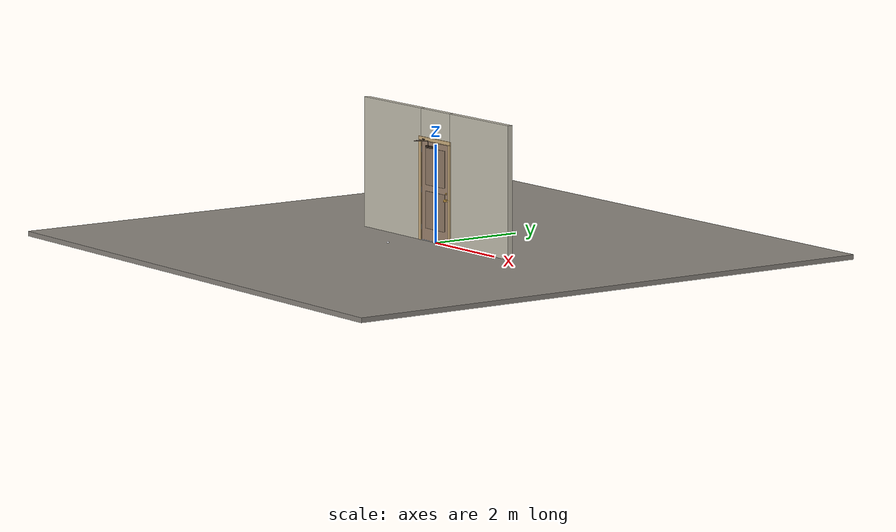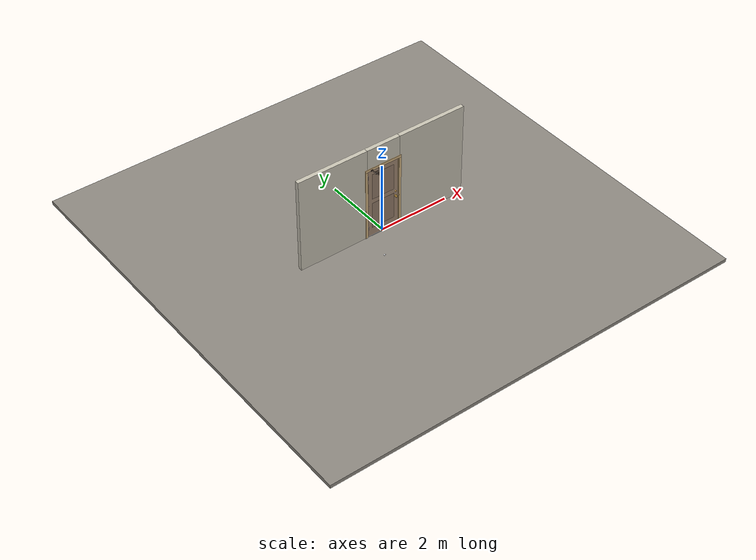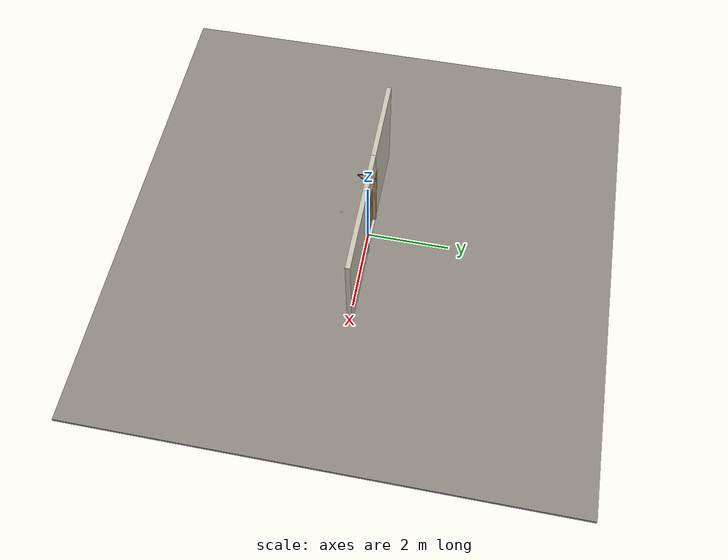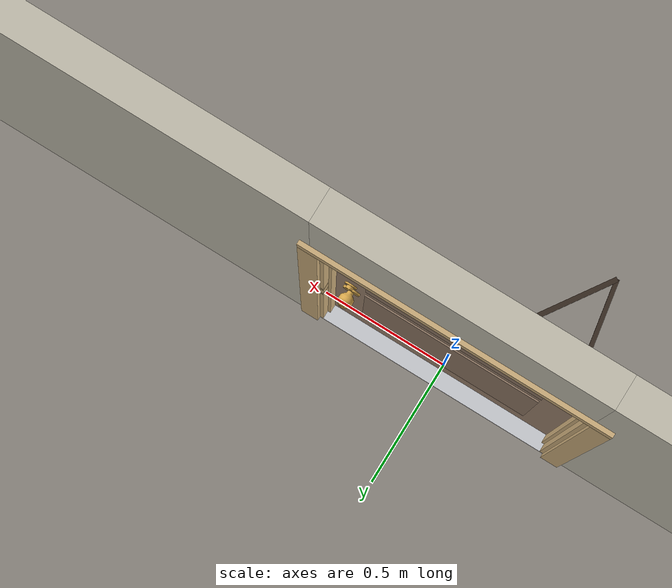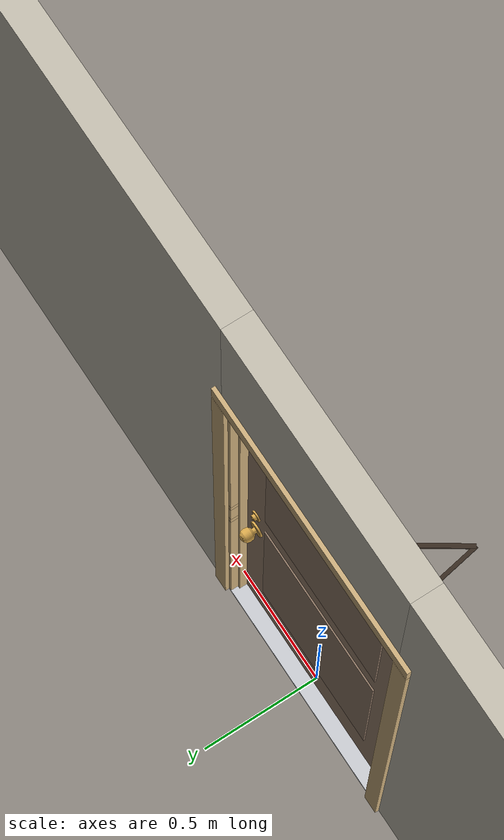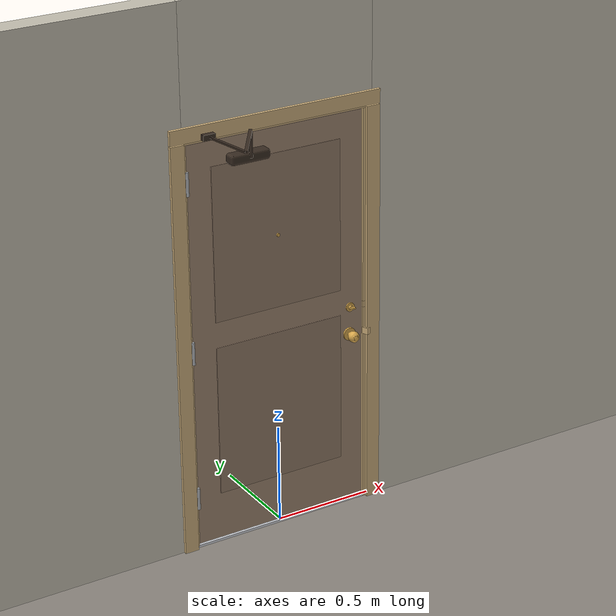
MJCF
<?xml version="1.0" ?>
<mujoco model="db0255_swing_single_full">
  <compiler angle="radian" meshdir="../../hardware" texturedir="../../textures" autolimits="true" inertiafromgeom="false"/>
  <option timestep="0.002" integrator="implicitfast" cone="elliptic" impratio="10" noslip_iterations="3">
    <flag multiccd="enable"/>
  </option>
  <size memory="16M"/>
  <default>
    <geom condim="4" solref="0.005 1" solimp="0.95 0.99 0.001"/>
    <joint solreflimit="0.005 1" solimplimit="0.95 0.99 0.001"/>
    <tendon solreflimit="0.005 1"/>
    <equality solref="0.002 1"/>
  </default>
  <visual>
    <headlight ambient="0.4 0.4 0.4" diffuse="0.7 0.7 0.7" specular="0.2 0.2 0.2"/>
    <quality shadowsize="4096"/>
    <map znear="0.01" zfar="60"/>
  </visual>
  <asset>
    <mesh name="closer_body_78399c60f5" file="closer_body_78399c60f5.obj"/>
    <mesh name="cyl_face_e9e5036966" file="cyl_face_e9e5036966.obj"/>
    <mesh name="hinge_e22b26c0c1" file="hinge_e22b26c0c1.obj"/>
    <mesh name="hinge_jamb_e1d088f8dc" file="hinge_jamb_e1d088f8dc.obj"/>
    <mesh name="knob_d1888f6f03" file="knob_d1888f6f03.obj"/>
    <mesh name="peephole_f829311a59" file="peephole_f829311a59.obj"/>
    <mesh name="thumbturn_eb5c9899a3" file="thumbturn_eb5c9899a3.obj"/>
    <material name="mat_floor" rgba="0.55 0.53 0.5 1" specular="0.2" shininess="0.15" reflectance="0"/>
    <material name="mat_wall" rgba="0.78 0.76 0.7 1" specular="0.2" shininess="0.1" reflectance="0"/>
    <material name="mat_leaf" rgba="0.625 0.525 0.44 1" specular="0.2" shininess="0.45" reflectance="0"/>
    <material name="mat_leaf_panel" rgba="0.575 0.483 0.405 1" specular="0.2" shininess="0.45" reflectance="0"/>
    <material name="mat_hinge" rgba="0.65 0.66 0.68 1" specular="0.74" shininess="0.5" reflectance="0.36"/>
    <material name="mat_op_brass" rgba="0.85 0.66 0.3 1" specular="0.8" shininess="0.75" reflectance="0.4"/>
    <material name="mat_trim" rgba="0.85 0.66 0.3 1" specular="0.8" shininess="0.75" reflectance="0.4"/>
    <material name="mat_bolt" rgba="0.85 0.66 0.3 1" specular="0.8" shininess="0.75" reflectance="0.4"/>
    <material name="mat_deadbolt" rgba="0.85 0.66 0.3 1" specular="0.8" shininess="0.75" reflectance="0.4"/>
    <material name="mat_frame" rgba="0.82 0.7 0.5 1" specular="0.2" shininess="0.45" reflectance="0"/>
    <material name="mat_seal" rgba="0.1 0.1 0.1 1" specular="0.2" shininess="0.1" reflectance="0"/>
    <material name="mat_threshold" rgba="0.8 0.81 0.83 1" specular="0.8" shininess="0.6" reflectance="0.4"/>
    <material name="mat_closer" rgba="0.22 0.17 0.13 1" specular="0.8" shininess="0.6" reflectance="0.4"/>
    <material name="mat_peephole" rgba="0.85 0.66 0.3 1" specular="0.8" shininess="0.75" reflectance="0.4"/>
    <material name="mat_stop" rgba="0.9 0.9 0.92 1" specular="0.8" shininess="0.9" reflectance="0.4"/>
    <texture name="skybox" type="skybox" builtin="gradient" rgb1="0.6 0.7 0.85" rgb2="0.9 0.92 0.95" width="256" height="256"/>
  </asset>
  <worldbody>
    <light name="sun" pos="1.5 -2.5 4" dir="-0.3 0.5 -0.8" directional="true" diffuse="0.8 0.8 0.8" specular="0.3 0.3 0.3" castshadow="true"/>
    <light name="fill" pos="-1.5 2.5 3" dir="0.3 -0.5 -0.7" directional="true" diffuse="0.35 0.35 0.4" castshadow="false"/>
    <camera name="robot_view" pos="0 -2.513687 1.734312" xyaxes="1 0 0 0 0.26963 0.962964" fovy="52"/>
    <camera name="far_view" pos="0 2.570688 1.734312" xyaxes="-1 0 0 0 -0.26963 0.962964" fovy="52"/>
    <camera name="iso" pos="1.932062 -2.106937 2.141063" xyaxes="0.741536 0.670913 0 -0.242917 0.268487 0.932151" fovy="46"/>
    <camera name="detail_handle" pos="0.5665 -0.8685 1.194" xyaxes="0.97561 0.219512 0 -0.070934 0.315262 0.94635" fovy="38"/>
    <geom name="floor" type="box" size="6 6 0.05" pos="0 0 -0.05" material="mat_floor" group="0" contype="1" conaffinity="1" friction="0.8 0.005 0.0001" density="2400"/>
    <geom name="wall_left" type="box" size="1.01025 0.0575 1.35" pos="-1.48975 0.0285 1.35" material="mat_wall" group="0" contype="1" conaffinity="1" friction="0.6 0.005 0.0001" density="800"/>
    <geom name="wall_right" type="box" size="0.99525 0.0575 1.35" pos="1.50475 0.0285 1.35" material="mat_wall" group="0" contype="1" conaffinity="1" friction="0.6 0.005 0.0001" density="800"/>
    <geom name="wall_header" type="box" size="0.4945 0.0575 0.303" pos="0.015 0.0285 2.397" material="mat_wall" group="0" contype="1" conaffinity="1" friction="0.6 0.005 0.0001" density="800"/>
    <geom name="hinge_0_jamb" type="mesh" mesh="hinge_jamb_e1d088f8dc" pos="-0.4575 -0.029 0.267" material="mat_hinge" group="1" contype="0" conaffinity="0" density="7850"/>
    <geom name="hinge_1_jamb" type="mesh" mesh="hinge_jamb_e1d088f8dc" pos="-0.4575 -0.029 1.029" material="mat_hinge" group="1" contype="0" conaffinity="0" density="7850"/>
    <geom name="hinge_2_jamb" type="mesh" mesh="hinge_jamb_e1d088f8dc" pos="-0.4575 -0.029 1.861" material="mat_hinge" group="1" contype="0" conaffinity="0" density="7850"/>
    <geom name="leaf_deadbolt_strike_b" type="box" size="0.0155 0.003 0.0005" pos="0.46 0 1.0355" quat="-0.5 -0.5 0.5 0.5" material="mat_deadbolt" group="1" contype="0" conaffinity="0" density="7800"/>
    <geom name="leaf_deadbolt_strike_l" type="box" size="0.003 0.0155 0.0005" pos="0.46 0.0125 1.054" quat="-0.5 -0.5 0.5 0.5" material="mat_deadbolt" group="1" contype="0" conaffinity="0" density="7800"/>
    <geom name="leaf_deadbolt_strike_t" type="box" size="0.0155 0.003 0.0005" pos="0.46 0 1.0725" quat="-0.5 -0.5 0.5 0.5" material="mat_deadbolt" group="1" contype="0" conaffinity="0" density="7800"/>
    <geom name="leaf_deadbolt_strike_r" type="box" size="0.003 0.0155 0.0005" pos="0.46 -0.0125 1.054" quat="-0.5 -0.5 0.5 0.5" material="mat_deadbolt" group="1" contype="0" conaffinity="0" density="7800"/>
    <geom name="jamb_hinge" type="box" size="0.0095 0.0575 1.0225" pos="-0.47 0.0285 1.0225" material="mat_frame" group="0" contype="1" conaffinity="1" friction="0.6 0.005 0.0001" density="400"/>
    <geom name="strike_914_wall_n" type="box" size="0.0245 0.039075 0.0167" pos="0.485 0.046925 0.914" material="mat_frame" group="0" contype="1" conaffinity="1" friction="0.6 0.005 0.0001" density="400"/>
    <geom name="strike_914_wall_p" type="box" size="0.0245 0.008 0.0167" pos="0.485 -0.01585 0.914" material="mat_frame" group="0" contype="1" conaffinity="1" friction="0.6 0.005 0.0001" density="400"/>
    <geom name="strike_914_ramp" type="box" size="0.0245 0.01649 0.0167" pos="0.489636 -0.028673 0.914" quat="0.977148 0 0 0.212558" material="mat_frame" group="0" contype="1" conaffinity="1" friction="0.12 0.005 0.0001" density="400"/>
    <geom name="strike_914_back" type="box" size="0.01615 0.00785 0.0167" pos="0.49335 0 0.914" material="mat_frame" group="0" contype="1" conaffinity="1" friction="0.6 0.005 0.0001" density="400"/>
    <geom name="strike_1054_wall_n" type="box" size="0.0245 0.03825 0.0155" pos="0.485 0.04775 1.054" material="mat_frame" group="0" contype="1" conaffinity="1" friction="0.6 0.005 0.0001" density="400"/>
    <geom name="strike_1054_wall_p" type="box" size="0.0245 0.00975 0.0155" pos="0.485 -0.01925 1.054" material="mat_frame" group="0" contype="1" conaffinity="1" friction="0.6 0.005 0.0001" density="400"/>
    <geom name="strike_1054_back" type="box" size="0.0098 0.0095 0.0155" pos="0.4997 0 1.054" material="mat_frame" group="0" contype="1" conaffinity="1" friction="0.6 0.005 0.0001" density="400"/>
    <geom name="jamb_strike_0" type="box" size="0.0245 0.0575 0.44865" pos="0.485 0.0285 0.44865" material="mat_frame" group="0" contype="1" conaffinity="1" friction="0.6 0.005 0.0001" density="400"/>
    <geom name="jamb_strike_1" type="box" size="0.0245 0.0575 0.0539" pos="0.485 0.0285 0.9846" material="mat_frame" group="0" contype="1" conaffinity="1" friction="0.6 0.005 0.0001" density="400"/>
    <geom name="jamb_strike_2" type="box" size="0.0245 0.0575 0.48775" pos="0.485 0.0285 1.55725" material="mat_frame" group="0" contype="1" conaffinity="1" friction="0.6 0.005 0.0001" density="400"/>
    <geom name="jamb_head" type="box" size="0.4945 0.0575 0.0095" pos="0.015 0.0285 2.0545" material="mat_frame" group="0" contype="1" conaffinity="1" friction="0.6 0.005 0.0001" density="400"/>
    <geom name="head_stud" type="box" size="0.4945 0.0575 0.015" pos="0.015 0.0285 2.079" material="mat_wall" group="0" contype="1" conaffinity="1" friction="0.6 0.005 0.0001" density="500"/>
    <geom name="stop_hinge" type="box" size="0.0055 0.016 1.0225" pos="-0.455 0.0385 1.0225" material="mat_frame" group="0" contype="1" conaffinity="1" friction="0.6 0.005 0.0001" density="400"/>
    <geom name="stop_strike" type="box" size="0.0055 0.016 1.0225" pos="0.455 0.0385 1.0225" material="mat_frame" group="0" contype="1" conaffinity="1" friction="0.6 0.005 0.0001" density="400"/>
    <geom name="stop_head" type="box" size="0.4605 0.016 0.0055" pos="0 0.0385 2.0395" material="mat_frame" group="0" contype="1" conaffinity="1" friction="0.6 0.005 0.0001" density="400"/>
    <geom name="seal_hinge" type="box" size="0.004 0.002 1.0225" pos="-0.4575 0.024 1.0225" material="mat_seal" group="1" contype="0" conaffinity="0" density="1100"/>
    <geom name="seal_strike" type="box" size="0.004 0.002 1.0225" pos="0.4575 0.024 1.0225" material="mat_seal" group="1" contype="0" conaffinity="0" density="1100"/>
    <geom name="seal_head" type="box" size="0.4405 0.002 0.008" pos="0 0.024 2.033" material="mat_seal" group="1" contype="0" conaffinity="0" density="1100"/>
    <geom name="casing_l_n" type="box" size="0.035 0.008 1.032" pos="-0.5095 -0.037 1.0225" material="mat_frame" group="2" contype="0" conaffinity="0" density="400"/>
    <geom name="casing_r_n" type="box" size="0.035 0.008 1.032" pos="0.5095 -0.037 1.0225" material="mat_frame" group="2" contype="0" conaffinity="0" density="400"/>
    <geom name="casing_h_n" type="box" size="0.5445 0.008 0.035" pos="0 -0.037 2.094" material="mat_frame" group="2" contype="0" conaffinity="0" density="400"/>
    <geom name="casing_l_p" type="box" size="0.035 0.008 1.032" pos="-0.5095 0.094 1.0225" material="mat_frame" group="2" contype="0" conaffinity="0" density="400"/>
    <geom name="casing_r_p" type="box" size="0.035 0.008 1.032" pos="0.5095 0.094 1.0225" material="mat_frame" group="2" contype="0" conaffinity="0" density="400"/>
    <geom name="casing_h_p" type="box" size="0.5445 0.008 0.035" pos="0 0.094 2.094" material="mat_frame" group="2" contype="0" conaffinity="0" density="400"/>
    <geom name="threshold" type="box" size="0.4795 0.0575 0.0065" pos="0 0.0285 0.0065" material="mat_threshold" group="0" contype="1" conaffinity="1" friction="0.5 0.005 0.0001" density="2700"/>
    <geom name="closer_bracket" type="box" size="0.03 0.012 0.014" pos="-0.3605 -0.057 2.075" material="mat_closer" group="1" contype="0" conaffinity="0" density="2700"/>
    <geom name="floor_stop_dome" type="sphere" size="0.025" pos="-0.545135 -0.801201 0" material="mat_stop" group="0" contype="1" conaffinity="1" friction="0.6 0.005 0.0001" density="7000"/>
    <site name="approach_point" pos="0 -1.5 0" quat="1 0 0 0" size="0.05" rgba="0.2 0.9 0.2 0.5" group="4"/>
    <site name="goal_point" pos="0 1.5 0" quat="1 0 0 0" size="0.05" rgba="0.2 0.9 0.2 0.5" group="4"/>
    <site name="door_plane_center" pos="0 0 1.0225" quat="1 0 0 0" size="0.02" rgba="0.2 0.9 0.2 0.5" group="4"/>
    <body name="leaf" pos="-0.4605 0 0">
      <inertial pos="0.44007 -0.004818 1.109777" mass="43.618477" quat="-0.495717 0.485789 0.509016 0.509094" diaginertia="2.966011663 16.554224023 19.489310961"/>
      <joint name="leaf_hinge" type="hinge" axis="0 0 -1" pos="0.003 -0.029 0" limited="true" range="0 1.658063" solreflimit="0.02 1" damping="6.25611" frictionloss="0.95807" stiffness="9.135494" springref="-1.778776" armature="0.02"/>
      <geom name="leaf_slab" type="box" size="0.457 0.022 1.012" pos="0.46 0 1.029" material="mat_leaf" group="0" contype="1" conaffinity="1" friction="0.35 0.005 0.0001" density="1"/>
      <geom name="leaf_panel_0_n" type="box" size="0.33646 0.003 0.38254" pos="0.46 -0.025 0.64218" material="mat_leaf_panel" group="1" contype="0" conaffinity="0" density="1"/>
      <geom name="leaf_panel_0_p" type="box" size="0.33646 0.003 0.38254" pos="0.46 0.025 0.64218" material="mat_leaf_panel" group="1" contype="0" conaffinity="0" density="1"/>
      <geom name="leaf_panel_1_n" type="box" size="0.33646 0.003 0.38254" pos="0.46 -0.025 1.53726" material="mat_leaf_panel" group="1" contype="0" conaffinity="0" density="1"/>
      <geom name="leaf_panel_1_p" type="box" size="0.33646 0.003 0.38254" pos="0.46 0.025 1.53726" material="mat_leaf_panel" group="1" contype="0" conaffinity="0" density="1"/>
      <geom name="hinge_0" type="mesh" mesh="hinge_e22b26c0c1" pos="0.003 -0.029 0.267" material="mat_hinge" group="1" contype="0" conaffinity="0" density="7850"/>
      <geom name="hinge_1" type="mesh" mesh="hinge_e22b26c0c1" pos="0.003 -0.029 1.029" material="mat_hinge" group="1" contype="0" conaffinity="0" density="7850"/>
      <geom name="hinge_2" type="mesh" mesh="hinge_e22b26c0c1" pos="0.003 -0.029 1.861" material="mat_hinge" group="1" contype="0" conaffinity="0" density="7850"/>
      <geom name="leaf_latch_bolt_faceplate" type="box" size="0.0006 0.01235 0.0267" pos="0.9164 0 0.914" material="mat_bolt" group="1" contype="0" conaffinity="0" density="8500"/>
      <geom name="leaf_deadbolt_faceplate" type="box" size="0.0006 0.014 0.0245" pos="0.9164 0 1.054" material="mat_deadbolt" group="1" contype="0" conaffinity="0" density="8500"/>
      <geom name="leaf_deadbolt_cylinder_face" type="mesh" mesh="cyl_face_e9e5036966" pos="0.852 0.022 1.054" quat="-0.707107 0.707107 0 0" material="mat_deadbolt" group="1" contype="0" conaffinity="0" density="7100"/>
      <geom name="closer_body" type="mesh" mesh="closer_body_78399c60f5" pos="0.3 -0.022 1.944" quat="0.707107 0.707107 0 0" material="mat_closer" group="1" contype="0" conaffinity="0" density="2000"/>
      <geom name="closer_body_col" type="box" size="0.1 0.03 0.025" pos="0.3 -0.052 1.944" material="mat_closer" group="3" contype="1" conaffinity="1" rgba="0.8 0.3 0.3 0.25" friction="0.6 0.005 0.0001" density="2000"/>
      <geom name="closer_pinion_shaft" type="cylinder" size="0.008 0.0655" pos="0.3 -0.08 2.0095" material="mat_closer" group="1" contype="0" conaffinity="0" density="2700"/>
      <geom name="peephole" type="mesh" mesh="peephole_f829311a59" pos="0.46 -0.022 1.517" quat="0.707107 0.707107 0 0" material="mat_peephole" group="2" contype="0" conaffinity="0" density="8500"/>
      <site name="leaf_edge_mid" pos="0.917 0 1.012" quat="1 0 0 0" size="0.02" rgba="0.2 0.9 0.2 0.5" group="4"/>
      <body name="leaf_handle" pos="0.847 0 0.914">
        <inertial pos="0 0 0" mass="1.151952" quat="0.5 -0.5 0.5 -0.5" diaginertia="0.000312514 0.004264603 0.004264603"/>
        <joint name="leaf_handle_hinge" type="hinge" axis="0 -1 0" limited="true" range="0 0.87" damping="0.143614" frictionloss="0.038" stiffness="0.5" springref="-0.5" armature="0.01"/>
        <geom name="leaf_handle_spindle" type="cylinder" size="0.006 0.03" pos="0 0 0" quat="0.707107 -0.707107 0 0" material="mat_op_brass" group="1" contype="0" conaffinity="0" density="7850"/>
        <geom name="leaf_handle_knob_n" type="mesh" mesh="knob_d1888f6f03" pos="0 -0.022 0" quat="0.707107 0.707107 0 0" material="mat_op_brass" group="1" contype="0" conaffinity="0" density="3000"/>
        <geom name="leaf_handle_knob_col_n" type="sphere" size="0.0243" pos="0 -0.0685 0" material="mat_op_brass" group="0" contype="1" conaffinity="1" friction="0.9 0.01 0.0001" density="3000"/>
        <geom name="leaf_handle_knob_neck_n" type="cylinder" size="0.011 0.012" pos="0 -0.034 0" quat="0.707107 -0.707107 0 0" material="mat_op_brass" group="3" contype="1" conaffinity="1" rgba="0.8 0.3 0.3 0.25" friction="0.6 0.005 0.0001" density="3000"/>
        <geom name="leaf_handle_knob_p" type="mesh" mesh="knob_d1888f6f03" pos="0 0.022 0" quat="-0.707107 0.707107 0 0" material="mat_op_brass" group="1" contype="0" conaffinity="0" density="3000"/>
        <geom name="leaf_handle_knob_col_p" type="sphere" size="0.0243" pos="0 0.0685 0" material="mat_op_brass" group="0" contype="1" conaffinity="1" friction="0.9 0.01 0.0001" density="3000"/>
        <geom name="leaf_handle_knob_neck_p" type="cylinder" size="0.011 0.012" pos="0 0.034 0" quat="0.707107 -0.707107 0 0" material="mat_op_brass" group="3" contype="1" conaffinity="1" rgba="0.8 0.3 0.3 0.25" friction="0.6 0.005 0.0001" density="3000"/>
        <site name="leaf_handle_grip_n" pos="0 -0.0685 0" quat="1 0 0 0" size="0.012" rgba="0.2 0.9 0.2 0.5" group="4"/>
        <site name="leaf_handle_grip_p" pos="0 0.0685 0" quat="1 0 0 0" size="0.012" rgba="0.2 0.9 0.2 0.5" group="4"/>
      </body>
      <body name="leaf_latch_bolt" pos="0.917 0 0.914">
        <inertial pos="-0.00865 0 0" mass="0.041419" quat="0.92388 -0.382683 0 0" diaginertia="0.000000798 0.000005598 0.000005598"/>
        <joint name="leaf_latch_bolt_slide" type="slide" axis="-1 0 0" limited="true" range="0 0.0127" damping="2" frictionloss="0.3" stiffness="300" springref="-0.008333" armature="0.1"/>
        <geom name="leaf_latch_bolt_capsule" type="capsule" size="0.00635 0.015" pos="-0.00865 0 0" quat="0.707107 0 0.707107 0" material="mat_bolt" group="0" contype="1" conaffinity="1" friction="0.2 0.005 0.0001" density="8500"/>
      </body>
      <body name="leaf_deadbolt" pos="0.917 0 1.054">
        <inertial pos="-0.0277 0 0" mass="0.18836" quat="0 0 0.707107 0.707107" diaginertia="0.000013829 0.000052194 0.000057986"/>
        <joint name="leaf_deadbolt_slide" type="slide" axis="-1 0 0" limited="true" range="0 0.0254" damping="5" frictionloss="1.5" armature="0.1" ref="0.0254"/>
        <geom name="leaf_deadbolt_box" type="box" size="0.0277 0.008 0.0125" pos="-0.0277 0 0" material="mat_deadbolt" group="0" contype="1" conaffinity="1" friction="0.3 0.005 0.0001" density="8500"/>
      </body>
      <body name="leaf_deadbolt_thumbturn" pos="0.852 -0.022 1.054">
        <inertial pos="0 -0.012928 0" mass="0.178946" quat="0.000001 0.707107 -0.707107 -0.000001" diaginertia="0.000026045 0.000026215 0.000032438"/>
        <joint name="leaf_deadbolt_thumbturn_hinge" type="hinge" axis="0 1 0" limited="true" range="0 1.5708" damping="0.05" frictionloss="0.35" armature="0.005" ref="1.5708"/>
        <geom name="leaf_deadbolt_thumbturn_mesh" type="mesh" mesh="thumbturn_eb5c9899a3" pos="0 0 0" quat="0.499999 0.499999 0.500001 -0.500001" material="mat_deadbolt" group="0" contype="1" conaffinity="1" friction="0.6 0.005 0.0001" density="7100"/>
        <geom name="leaf_deadbolt_thumbturn_col" type="box" size="0.006 0.012 0.016" pos="0 -0.02 0" quat="0.707105 0 0.707108 0" material="mat_deadbolt" group="3" contype="1" conaffinity="1" rgba="0.8 0.3 0.3 0.25" friction="0.6 0.005 0.0001" density="7100"/>
      </body>
      <body name="closer_arm_main" pos="0.3 -0.08 2.075" quat="0.472212 0 0 -0.881485">
        <inertial pos="0.14 0 0" mass="0.12096" quat="1 0 0 0" diaginertia="0.000003588 0.00079128 0.000792852"/>
        <joint name="closer_pinion" type="hinge" axis="0 0 1" limited="false" damping="0.01" armature="0.002"/>
        <geom name="closer_arm_main_geom" type="box" size="0.14 0.008 0.005" pos="0.14 0 0" material="mat_closer" group="1" contype="0" conaffinity="0" density="2700"/>
        <body name="closer_arm_fore" pos="0.28 0 0" quat="-0.371222 0 0 0.928544">
          <inertial pos="0.128088 0 0" mass="0.076531" quat="1 0 0 0" diaginertia="0.000001771 0.000437665 0.000438201"/>
          <joint name="closer_elbow" type="hinge" axis="0 0 1" limited="false" damping="0.01" armature="0.002"/>
          <geom name="closer_arm_fore_geom" type="box" size="0.1125 0.007 0.004" pos="0.1125 0 0" material="mat_closer" group="1" contype="0" conaffinity="0" density="2700"/>
          <geom name="closer_fore_neck" type="box" size="0.0175 0.003 0.003" pos="0.2425 0 0" material="mat_closer" group="1" contype="0" conaffinity="0" density="2700"/>
          <geom name="closer_fore_pivot" type="cylinder" size="0.005 0.012" pos="0.26 0 0" material="mat_closer" group="1" contype="0" conaffinity="0" density="2700"/>
        </body>
      </body>
    </body>
  </worldbody>
  <tendon>
    <fixed name="leaf_latch_bolt_coupling" limited="true" range="0 10">
      <joint joint="leaf_latch_bolt_slide" coef="1"/>
      <joint joint="leaf_handle_hinge" coef="-0.015679"/>
    </fixed>
  </tendon>
  <equality>
    <joint name="leaf_deadbolt_couple" joint1="leaf_deadbolt_slide" joint2="leaf_deadbolt_thumbturn_hinge" polycoef="0 0.01617 0 0 0" active="true"/>
    <connect name="closer_arm_connect" body1="closer_arm_fore" body2="world" anchor="0.26 0 0" active="true"/>
  </equality>
  <contact>
    <exclude body1="leaf_deadbolt" body2="leaf_deadbolt_thumbturn"/>
    <exclude body1="closer_arm_main" body2="leaf"/>
    <exclude body1="closer_arm_fore" body2="leaf"/>
    <exclude body1="closer_arm_main" body2="closer_arm_fore"/>
  </contact>
  <sensor>
    <jointpos name="leaf_hinge_pos" joint="leaf_hinge"/>
    <jointvel name="leaf_hinge_vel" joint="leaf_hinge"/>
    <jointpos name="leaf_handle_hinge_pos" joint="leaf_handle_hinge"/>
    <jointvel name="leaf_handle_hinge_vel" joint="leaf_handle_hinge"/>
    <jointpos name="leaf_latch_bolt_slide_pos" joint="leaf_latch_bolt_slide"/>
    <jointvel name="leaf_latch_bolt_slide_vel" joint="leaf_latch_bolt_slide"/>
    <jointpos name="leaf_deadbolt_slide_pos" joint="leaf_deadbolt_slide"/>
    <jointvel name="leaf_deadbolt_slide_vel" joint="leaf_deadbolt_slide"/>
    <jointpos name="leaf_deadbolt_thumbturn_hinge_pos" joint="leaf_deadbolt_thumbturn_hinge"/>
    <jointvel name="leaf_deadbolt_thumbturn_hinge_vel" joint="leaf_deadbolt_thumbturn_hinge"/>
  </sensor>
</mujoco>
